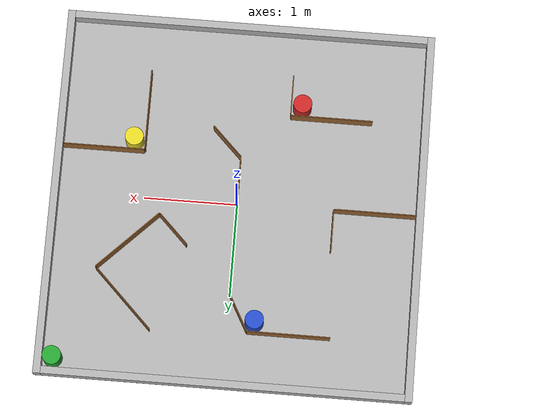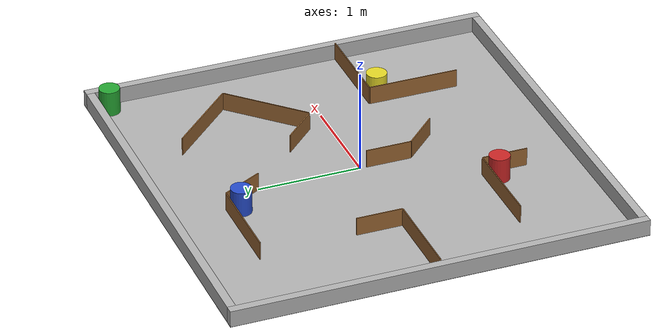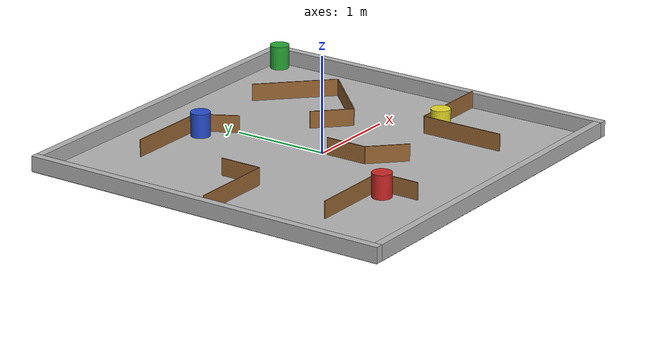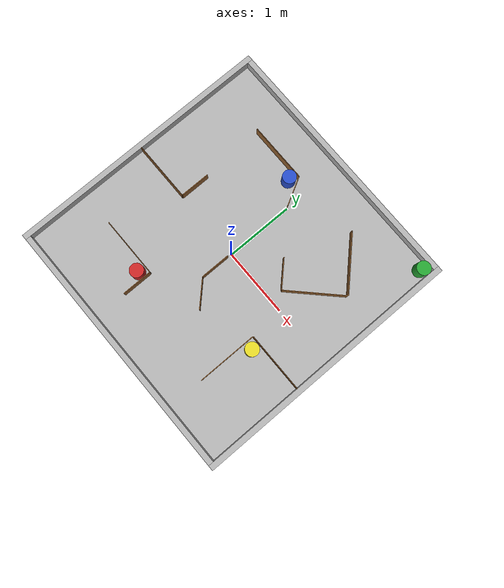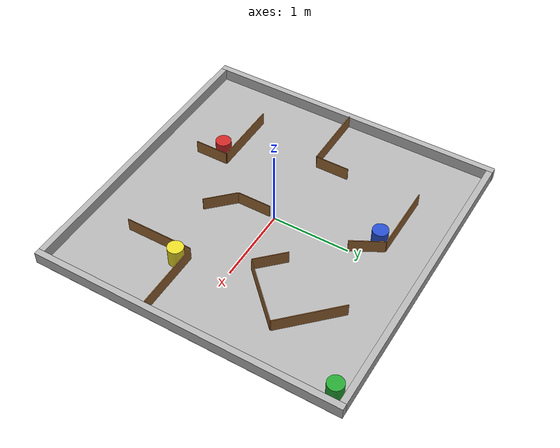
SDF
<?xml version="1.0"?>
<sdf version="1.6">
  <world name="default">

    <plugin
      filename="gz-sim-physics-system"
      name="gz::sim::systems::Physics">
    </plugin>
    <plugin
      filename="gz-sim-user-commands-system"
      name="gz::sim::systems::UserCommands">
    </plugin>
    <plugin
      filename="gz-sim-scene-broadcaster-system"
      name="gz::sim::systems::SceneBroadcaster">
    </plugin>
    <plugin
      filename="gz-sim-sensors-system"
      name="gz::sim::systems::Sensors">
      <render_engine>ogre2</render_engine>
    </plugin>
    <plugin
      filename="gz-sim-imu-system"
      name="gz::sim::systems::Imu">
    </plugin>

    <include>
      <uri>model://sixteen_zone_floor</uri>
    </include>

    <include>
      <uri>https://fuel.gazebosim.org/1.0/OpenRobotics/models/Sun</uri>
    </include>

    <scene>
      <shadows>false</shadows>
    </scene>

    <physics type="ode">
      <real_time_update_rate>1000.0</real_time_update_rate>
      <max_step_size>0.001</max_step_size>
      <real_time_factor>1</real_time_factor>
      <ode>
        <solver>
          <type>quick</type>
          <iters>150</iters>
          <precon_iters>0</precon_iters>
          <sor>1.400000</sor>
          <use_dynamic_moi_rescaling>1</use_dynamic_moi_rescaling>
        </solver>
        <constraints>
          <cfm>0.00001</cfm>
          <erp>0.2</erp>
          <contact_max_correcting_vel>2000.000000</contact_max_correcting_vel>
          <contact_surface_layer>0.01000</contact_surface_layer>
        </constraints>
      </ode>
    </physics>

    <include>
      <uri>model://cr5_arena_walls</uri>
    </include>

    <include>
      <uri>model://wooden_wall_long</uri>
      <name>01_long_wall_a1</name>
      <pose>1.12933 1.12933 0.0 0.0 0.0 -0.7854</pose>
    </include>

    <include>
      <uri>model://wooden_wall_long</uri>
      <name>02_long_wall_a2</name>
      <pose>1.12933 0.50000 0.0 0.0 0.0 0.7854</pose>
    </include>

    <include>
      <uri>model://wooden_wall_long</uri>
      <name>03_long_wall_a3</name>
      <pose>1.48000 -0.50000 0.0 0.0 0.0 0.0000</pose>
    </include>

    <include>
      <uri>model://wooden_wall_long</uri>
      <name>04_long_wall_a3</name>
      <pose>1.03500 -0.94500 0.0 0.0 0.0 1.5708</pose>
    </include>

    <include>
      <uri>model://wooden_wall_short</uri>
      <name>05_short_wall_b2</name>
      <pose>0.65556 0.34444 0.0 0.0 0.0 -0.7854</pose>
    </include>

    <include>
      <uri>model://wooden_wall_short</uri>
      <name>06_short_wall_b3</name>
      <pose>0.00000 -0.28000 0.0 0.0 0.0 1.5708</pose>
    </include>

    <include>
      <uri>model://wooden_wall_short</uri>
      <name>07_short_wall_b3</name>
      <pose>0.15709 -0.65926 0.0 0.0 0.0 -0.7854</pose>
    </include>

    <include>
      <uri>model://wooden_wall_long</uri>
      <name>08_long_wall_c1</name>
      <pose>-0.65374 1.38673 0.0 0.0 0.0 0.0000</pose>
    </include>

    <include>
      <uri>model://wooden_wall_short</uri>
      <name>09_short_wall_c1</name>
      <pose>-0.10437 1.19073 0.0 0.0 0.0 -1.0734</pose>
    </include>

    <include>
      <uri>model://wooden_wall_long</uri>
      <name>10_long_wall_c3</name>
      <pose>-0.94500 -1.00000 0.0 0.0 0.0 0.0000</pose>
    </include>

    <include>
      <uri>model://wooden_wall_short</uri>
      <name>11_short_wall_c4</name>
      <pose>-0.50000 -1.22500 0.0 0.0 0.0 1.5708</pose>
    </include>

    <include>
      <uri>model://wooden_wall_short</uri>
      <name>12_short_wall_d2</name>
      <pose>-1.03500 0.22500 0.0 0.0 0.0 1.5708</pose>
    </include>

    <include>
      <uri>model://wooden_wall_long</uri>
      <name>13_long_wall_d2</name>
      <pose>-1.48000 0.00000 0.0 0.0 0.0 0.0000</pose>
    </include>

    <include>
      <uri>model://beacon_green</uri>
      <pose>1.81 1.81 0 0 0 0</pose>
    </include>

    <include>
      <uri>model://beacon_yellow</uri>
      <pose>1.155 -0.62 0 0 0 0</pose>
    </include>

    <include>
      <uri>model://beacon_blue</uri>
      <pose>-0.28264 1.26673 0 0 0 0</pose>
    </include>

    <include>
      <uri>model://beacon_red</uri>
      <pose>-0.62 -1.12 0 0 0 0</pose>
    </include>

  </world>
</sdf>

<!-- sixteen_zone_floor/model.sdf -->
<sdf version="1.4">
<model name="sixteen_zone_floor">
  <static>true</static>
    <link name="floor">
      <collision name="collision">
        <geometry>
          <plane>
            <normal>0 0 1</normal>
            <size>4.0 4.0</size>
          </plane>
        </geometry>
        <surface>
          <friction>
            <ode>
              <mu>100</mu>
              <mu2>50</mu2>
            </ode>
          </friction>
        </surface>
      </collision>
      <visual name="visual">
        <cast_shadows>false</cast_shadows>
        <geometry>
          <plane>
            <normal>0 0 1</normal>
            <size>4.0 4.0</size>
          </plane>
        </geometry>
        <material>
          <diffuse>0.7 0.7 0.7 1</diffuse>
          <pbr>
            <metal>
              <albedo_map>materials/textures/floor.png</albedo_map>
              <metalness>0.0</metalness>
              <roughness>0.5</roughness>
            </metal>
          </pbr>
        </material>
      </visual>
    </link>
  </model>
</sdf>

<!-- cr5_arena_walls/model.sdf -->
<sdf version='1.6'>
  <model name='cr5_arena_walls'>
    <static>true</static>
    <pose frame=''>0 0 0.08 0 0 0</pose>

    <link name='Right_Wall'>
      <pose frame=''>0 1.96 0 0 0 0</pose>
      <collision name='Right_Wall_Collision'>
        <geometry>
          <box>
            <size>3.84 0.08 0.16</size>
          </box>
        </geometry>
      </collision>
      <visual name='Right_Wall_Visual'>
        <geometry>
          <box>
            <size>3.84 0.08 0.16</size>
          </box>
        </geometry>
        <material>
          <!-- Light Grey -->
          <diffuse>0.7 0.7 0.7 1</diffuse>
          <pbr>
            <metal>
              <metalness>0.0</metalness>
              <roughness>0.9</roughness>
            </metal>
          </pbr>
        </material>
      </visual>
    </link>

    <link name='Back_Wall'>
      <pose frame=''>-1.96 0 0 0 0 0</pose>
      <collision name='Back_Wall_Collision'>
        <geometry>
          <box>
            <size>0.08 4.00 0.16</size>
          </box>
        </geometry>
      </collision>
      <visual name='Back_Wall_Visual'>
        <geometry>
          <box>
            <size>0.08 4.00 0.16</size>
          </box>
        </geometry>
        <material>
          <!-- Light Grey -->
          <diffuse>0.7 0.7 0.7 1</diffuse>
          <pbr>
            <metal>
              <metalness>0.0</metalness>
              <roughness>0.9</roughness>
            </metal>
          </pbr>
        </material>
      </visual>
    </link>

    <link name='Left_Wall'>
      <pose frame=''>0 -1.96 0 0 0 0</pose>
      <collision name='Left_Wall_Collision'>
        <geometry>
          <box>
            <size>3.84 0.08 0.16</size>
          </box>
        </geometry>
      </collision>
      <visual name='Left_Wall_Visual'>
        <geometry>
          <box>
            <size>3.84 0.08 0.16</size>
          </box>
        </geometry>
        <material>
          <!-- Light Grey -->
          <diffuse>0.7 0.7 0.7 1</diffuse>
          <pbr>
            <metal>
              <metalness>0.0</metalness>
              <roughness>0.9</roughness>
            </metal>
          </pbr>
        </material>
      </visual>
    </link>

    <link name='Front_Wall'>
      <pose frame=''>1.96 0 0 0 0 0</pose>
      <collision name='Front_Wall_Collision'>
        <geometry>
          <box>
            <size>0.08 4.00 0.16</size>
          </box>
        </geometry>
      </collision>
      <visual name='Front_Wall_Visual'>
        <geometry>
          <box>
            <size>0.08 4.00 0.16</size>
          </box>
        </geometry>
        <material>
          <!-- Light Grey -->
          <diffuse>0.7 0.7 0.7 1</diffuse>
          <pbr>
            <metal>
              <metalness>0.0</metalness>
              <roughness>0.9</roughness>
            </metal>
          </pbr>
        </material>
      </visual>
    </link>

  </model>
</sdf>

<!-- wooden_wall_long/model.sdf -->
<sdf version="1.6">
<model name="wooden_wall_long">
  <static>false</static>
    <link name='wall'>
      <pose frame=''>0 0 0.09 0 0 0</pose>
      <collision name='coll'>
        <geometry>
          <box>
            <size>0.88 0.01 0.18</size>
          </box>
        </geometry>
      </collision>
      <visual name='vis'>
        <geometry>
          <box>
            <size>0.88 0.01 0.18</size>
          </box>
        </geometry>
        <material>
          <diffuse>0.6 0.4 0.2 1</diffuse>
          <pbr>
            <metal>
              <albedo_map>materials/textures/wood.jpg</albedo_map>
              <metalness>0.1</metalness>
              <roughness>0.8</roughness>
            </metal>
          </pbr>
        </material>
      </visual>
    </link>
  </model>
</sdf>

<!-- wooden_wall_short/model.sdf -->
<sdf version="1.6">
<model name="wooden_wall_1050_30_250">
  <static>false</static>
    <link name='wall'>
      <pose frame=''>0 0 0.09 0 0 0</pose>
      <collision name='coll'>
        <geometry>
          <box>
            <size>0.44 0.01 0.18</size>
          </box>
        </geometry>
      </collision>
      <visual name='vis'>
        <geometry>
          <box>
            <size>0.44 0.01 0.18</size>
          </box>
        </geometry>
        <material>
          <diffuse>0.6 0.4 0.2 1</diffuse>
          <pbr>
            <metal>
              <albedo_map>materials/textures/wood.jpg</albedo_map>
              <metalness>0.1</metalness>
              <roughness>0.8</roughness>
            </metal>
          </pbr>
        </material>
      </visual>
    </link>
  </model>
</sdf>

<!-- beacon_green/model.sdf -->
<sdf version="1.4">
<model name="beacon_green">
  <static>false</static>
  <link name='beacon_green'>
    <pose frame=''>0 0 0.125 0 0 0</pose>
    <collision name='coll'>
      <geometry>
        <cylinder>
          <radius>0.1</radius>
          <length>0.25</length>
        </cylinder>
      </geometry>
      <max_contacts>10</max_contacts>
    </collision>
    <visual name='vis'>
      <geometry>
        <cylinder>
          <radius>0.1</radius>
          <length>0.25</length>
        </cylinder>
      </geometry>
      <material>
        <script>
          <uri>file://media/materials/scripts/gazebo.material</uri>
          <name>Gazebo/Green</name>
        </script>
      </material>
    </visual>
  </link>
  </model>
</sdf>

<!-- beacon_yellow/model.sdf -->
<sdf version="1.4">
<model name="beacon_yellow">
  <static>false</static>
  <link name='beacon_yellow'>
    <pose frame=''>0 0 0.125 0 0 0</pose>
    <collision name='coll'>
      <geometry>
        <cylinder>
          <radius>0.1</radius>
          <length>0.25</length>
        </cylinder>
      </geometry>
      <max_contacts>10</max_contacts>
    </collision>
    <visual name='vis'>
      <geometry>
        <cylinder>
          <radius>0.1</radius>
          <length>0.25</length>
        </cylinder>
      </geometry>
      <material>
        <script>
          <uri>file://media/materials/scripts/gazebo.material</uri>
          <name>Gazebo/Yellow</name>
        </script>
      </material>
    </visual>
  </link>
  </model>
</sdf>

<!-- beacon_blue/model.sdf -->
<sdf version="1.4">
<model name="beacon_blue">
  <static>false</static>
  <link name='beacon_blue'>
    <pose frame=''>0 0 0.125 0 0 0</pose>
    <collision name='coll'>
      <geometry>
        <cylinder>
          <radius>0.1</radius>
          <length>0.25</length>
        </cylinder>
      </geometry>
      <max_contacts>10</max_contacts>
    </collision>
    <visual name='vis'>
      <geometry>
        <cylinder>
          <radius>0.1</radius>
          <length>0.25</length>
        </cylinder>
      </geometry>
      <material>
        <script>
          <uri>file://media/materials/scripts/gazebo.material</uri>
          <name>Gazebo/Blue</name>
        </script>
      </material>
    </visual>
  </link>
  </model>
</sdf>

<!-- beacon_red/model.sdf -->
<sdf version="1.4">
<model name="beacon_red">
  <static>false</static>
  <link name='beacon_red'>
    <pose frame=''>0 0 0.125 0 0 0</pose>
    <collision name='coll'>
      <geometry>
        <cylinder>
          <radius>0.1</radius>
          <length>0.25</length>
        </cylinder>
      </geometry>
      <max_contacts>10</max_contacts>
    </collision>
    <visual name='vis'>
      <geometry>
        <cylinder>
          <radius>0.1</radius>
          <length>0.25</length>
        </cylinder>
      </geometry>
      <material>
        <script>
          <uri>file://media/materials/scripts/gazebo.material</uri>
          <name>Gazebo/Red</name>
        </script>
      </material>
    </visual>
  </link>
  </model>
</sdf>
